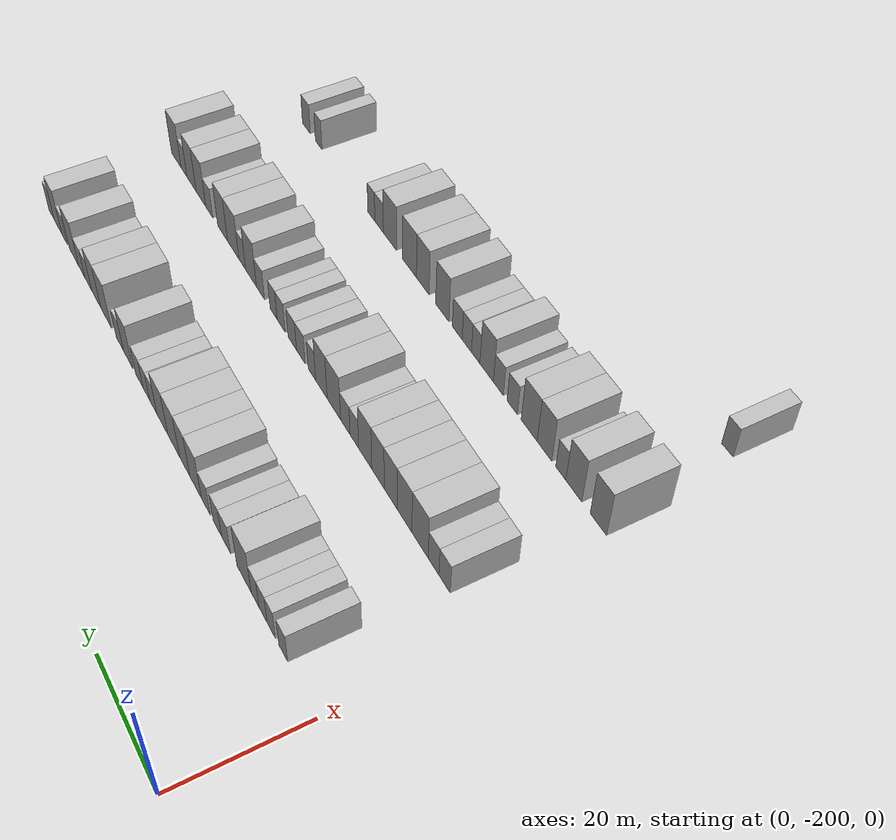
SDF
<sdf version="1.6">
 <world name="default">
  <model name="building_48">
   <static>1</static>
   <pose>25.0000 -190.4062 0 0.000000 0.000000 0.000000</pose>
   <link name="link">
    <pose>0 0 3.00 0 0 0</pose>
    <collision name="collision"><geometry><box><size>10.0000 2.5578 6.0000</size></box></geometry></collision>
    <visual name="visual">
     <cast_shadows>0</cast_shadows>
     <geometry><box><size>10.0000 2.5578 6.0000</size></box></geometry>
     <material>
      <script>
       <uri>model://HANNAS_wall/materials/scripts</uri>
       <uri>model://HANNAS_wall/materials/textures</uri>
       <name>vrc/HANNAS_wall</name>
      </script>
     </material>
    </visual>
   </link>
  </model>
  <model name="building_49">
   <static>1</static>
   <pose>25.0000 -186.9182 0 0.000000 0.000000 0.000000</pose>
   <link name="link">
    <pose>0 0 3.00 0 0 0</pose>
    <collision name="collision"><geometry><box><size>10.0000 2.4184 6.0000</size></box></geometry></collision>
    <visual name="visual">
     <cast_shadows>0</cast_shadows>
     <geometry><box><size>10.0000 2.4184 6.0000</size></box></geometry>
     <material>
      <script>
       <uri>model://HANNAS_wall/materials/scripts</uri>
       <uri>model://HANNAS_wall/materials/textures</uri>
       <name>vrc/HANNAS_wall</name>
      </script>
     </material>
    </visual>
   </link>
  </model>
  <model name="building_50">
   <static>1</static>
   <pose>25.0000 -184.4564 0 0.000000 0.000000 0.000000</pose>
   <link name="link">
    <pose>0 0 3.00 0 0 0</pose>
    <collision name="collision"><geometry><box><size>10.0000 2.5052 6.0000</size></box></geometry></collision>
    <visual name="visual">
     <cast_shadows>0</cast_shadows>
     <geometry><box><size>10.0000 2.5052 6.0000</size></box></geometry>
     <material>
      <script>
       <uri>model://HANNAS_wall/materials/scripts</uri>
       <uri>model://HANNAS_wall/materials/textures</uri>
       <name>vrc/HANNAS_wall</name>
      </script>
     </material>
    </visual>
   </link>
  </model>
  <model name="building_51">
   <static>1</static>
   <pose>25.0000 -181.9960 0 0.000000 0.000000 0.000000</pose>
   <link name="link">
    <pose>0 0 3.00 0 0 0</pose>
    <collision name="collision"><geometry><box><size>10.0000 2.4155 6.0000</size></box></geometry></collision>
    <visual name="visual">
     <cast_shadows>0</cast_shadows>
     <geometry><box><size>10.0000 2.4155 6.0000</size></box></geometry>
     <material>
      <script>
       <uri>model://HANNAS_wall/materials/scripts</uri>
       <uri>model://HANNAS_wall/materials/textures</uri>
       <name>vrc/HANNAS_wall</name>
      </script>
     </material>
    </visual>
   </link>
  </model>
  <model name="building_52">
   <static>1</static>
   <pose>25.0000 -178.5819 0 0.000000 0.000000 0.000000</pose>
   <link name="link">
    <pose>0 0 4.50 0 0 0</pose>
    <collision name="collision"><geometry><box><size>10.0000 4.4126 9.0000</size></box></geometry></collision>
    <visual name="visual">
     <cast_shadows>0</cast_shadows>
     <geometry><box><size>10.0000 4.4126 9.0000</size></box></geometry>
     <material>
      <script>
       <uri>model://HANNAS_wall/materials/scripts</uri>
       <uri>model://HANNAS_wall/materials/textures</uri>
       <name>vrc/HANNAS_wall</name>
      </script>
     </material>
    </visual>
   </link>
  </model>
  <model name="building_53">
   <static>1</static>
   <pose>25.0000 -172.8973 0 0.000000 0.000000 0.000000</pose>
   <link name="link">
    <pose>0 0 3.00 0 0 0</pose>
    <collision name="collision"><geometry><box><size>10.0000 2.9566 6.0000</size></box></geometry></collision>
    <visual name="visual">
     <cast_shadows>0</cast_shadows>
     <geometry><box><size>10.0000 2.9566 6.0000</size></box></geometry>
     <material>
      <script>
       <uri>model://HANNAS_wall/materials/scripts</uri>
       <uri>model://HANNAS_wall/materials/textures</uri>
       <name>vrc/HANNAS_wall</name>
      </script>
     </material>
    </visual>
   </link>
  </model>
  <model name="building_54">
   <static>1</static>
   <pose>25.0000 -170.0509 0 0.000000 0.000000 0.000000</pose>
   <link name="link">
    <pose>0 0 3.00 0 0 0</pose>
    <collision name="collision"><geometry><box><size>10.0000 2.7363 6.0000</size></box></geometry></collision>
    <visual name="visual">
     <cast_shadows>0</cast_shadows>
     <geometry><box><size>10.0000 2.7363 6.0000</size></box></geometry>
     <material>
      <script>
       <uri>model://HANNAS_wall/materials/scripts</uri>
       <uri>model://HANNAS_wall/materials/textures</uri>
       <name>vrc/HANNAS_wall</name>
      </script>
     </material>
    </visual>
   </link>
  </model>
  <model name="building_55">
   <static>1</static>
   <pose>25.0000 -166.2082 0 0.000000 0.000000 0.000000</pose>
   <link name="link">
    <pose>0 0 3.00 0 0 0</pose>
    <collision name="collision"><geometry><box><size>10.0000 2.9493 6.0000</size></box></geometry></collision>
    <visual name="visual">
     <cast_shadows>0</cast_shadows>
     <geometry><box><size>10.0000 2.9493 6.0000</size></box></geometry>
     <material>
      <script>
       <uri>model://HANNAS_wall/materials/scripts</uri>
       <uri>model://HANNAS_wall/materials/textures</uri>
       <name>vrc/HANNAS_wall</name>
      </script>
     </material>
    </visual>
   </link>
  </model>
  <model name="building_56">
   <static>1</static>
   <pose>25.0000 -162.7628 0 0.000000 0.000000 0.000000</pose>
   <link name="link">
    <pose>0 0 4.50 0 0 0</pose>
    <collision name="collision"><geometry><box><size>10.0000 3.9414 9.0000</size></box></geometry></collision>
    <visual name="visual">
     <cast_shadows>0</cast_shadows>
     <geometry><box><size>10.0000 3.9414 9.0000</size></box></geometry>
     <material>
      <script>
       <uri>model://HANNAS_wall/materials/scripts</uri>
       <uri>model://HANNAS_wall/materials/textures</uri>
       <name>vrc/HANNAS_wall</name>
      </script>
     </material>
    </visual>
   </link>
  </model>
  <model name="building_57">
   <static>1</static>
   <pose>25.0000 -158.9869 0 0.000000 0.000000 0.000000</pose>
   <link name="link">
    <pose>0 0 4.50 0 0 0</pose>
    <collision name="collision"><geometry><box><size>10.0000 3.6104 9.0000</size></box></geometry></collision>
    <visual name="visual">
     <cast_shadows>0</cast_shadows>
     <geometry><box><size>10.0000 3.6104 9.0000</size></box></geometry>
     <material>
      <script>
       <uri>model://HANNAS_wall/materials/scripts</uri>
       <uri>model://HANNAS_wall/materials/textures</uri>
       <name>vrc/HANNAS_wall</name>
      </script>
     </material>
    </visual>
   </link>
  </model>
  <model name="building_58">
   <static>1</static>
   <pose>25.0000 -155.0397 0 0.000000 0.000000 0.000000</pose>
   <link name="link">
    <pose>0 0 4.50 0 0 0</pose>
    <collision name="collision"><geometry><box><size>10.0000 4.2842 9.0000</size></box></geometry></collision>
    <visual name="visual">
     <cast_shadows>0</cast_shadows>
     <geometry><box><size>10.0000 4.2842 9.0000</size></box></geometry>
     <material>
      <script>
       <uri>model://HANNAS_wall/materials/scripts</uri>
       <uri>model://HANNAS_wall/materials/textures</uri>
       <name>vrc/HANNAS_wall</name>
      </script>
     </material>
    </visual>
   </link>
  </model>
  <model name="building_59">
   <static>1</static>
   <pose>25.0000 -150.8545 0 0.000000 0.000000 0.000000</pose>
   <link name="link">
    <pose>0 0 4.50 0 0 0</pose>
    <collision name="collision"><geometry><box><size>10.0000 4.0862 9.0000</size></box></geometry></collision>
    <visual name="visual">
     <cast_shadows>0</cast_shadows>
     <geometry><box><size>10.0000 4.0862 9.0000</size></box></geometry>
     <material>
      <script>
       <uri>model://HANNAS_wall/materials/scripts</uri>
       <uri>model://HANNAS_wall/materials/textures</uri>
       <name>vrc/HANNAS_wall</name>
      </script>
     </material>
    </visual>
   </link>
  </model>
  <model name="building_60">
   <static>1</static>
   <pose>25.0000 -147.4458 0 0.000000 0.000000 0.000000</pose>
   <link name="link">
    <pose>0 0 3.00 0 0 0</pose>
    <collision name="collision"><geometry><box><size>10.0000 2.7311 6.0000</size></box></geometry></collision>
    <visual name="visual">
     <cast_shadows>0</cast_shadows>
     <geometry><box><size>10.0000 2.7311 6.0000</size></box></geometry>
     <material>
      <script>
       <uri>model://HANNAS_wall/materials/scripts</uri>
       <uri>model://HANNAS_wall/materials/textures</uri>
       <name>vrc/HANNAS_wall</name>
      </script>
     </material>
    </visual>
   </link>
  </model>
  <model name="building_61">
   <static>1</static>
   <pose>25.0000 -144.8244 0 0.000000 0.000000 0.000000</pose>
   <link name="link">
    <pose>0 0 3.00 0 0 0</pose>
    <collision name="collision"><geometry><box><size>10.0000 2.5116 6.0000</size></box></geometry></collision>
    <visual name="visual">
     <cast_shadows>0</cast_shadows>
     <geometry><box><size>10.0000 2.5116 6.0000</size></box></geometry>
     <material>
      <script>
       <uri>model://HANNAS_wall/materials/scripts</uri>
       <uri>model://HANNAS_wall/materials/textures</uri>
       <name>vrc/HANNAS_wall</name>
      </script>
     </material>
    </visual>
   </link>
  </model>
  <model name="building_62">
   <static>1</static>
   <pose>25.0000 -142.0736 0 0.000000 0.000000 0.000000</pose>
   <link name="link">
    <pose>0 0 3.00 0 0 0</pose>
    <collision name="collision"><geometry><box><size>10.0000 2.9901 6.0000</size></box></geometry></collision>
    <visual name="visual">
     <cast_shadows>0</cast_shadows>
     <geometry><box><size>10.0000 2.9901 6.0000</size></box></geometry>
     <material>
      <script>
       <uri>model://HANNAS_wall/materials/scripts</uri>
       <uri>model://HANNAS_wall/materials/textures</uri>
       <name>vrc/HANNAS_wall</name>
      </script>
     </material>
    </visual>
   </link>
  </model>
  <model name="building_63">
   <static>1</static>
   <pose>25.0000 -137.6854 0 0.000000 0.000000 0.000000</pose>
   <link name="link">
    <pose>0 0 4.50 0 0 0</pose>
    <collision name="collision"><geometry><box><size>10.0000 3.7863 9.0000</size></box></geometry></collision>
    <visual name="visual">
     <cast_shadows>0</cast_shadows>
     <geometry><box><size>10.0000 3.7863 9.0000</size></box></geometry>
     <material>
      <script>
       <uri>model://HANNAS_wall/materials/scripts</uri>
       <uri>model://HANNAS_wall/materials/textures</uri>
       <name>vrc/HANNAS_wall</name>
      </script>
     </material>
    </visual>
   </link>
  </model>
  <model name="building_64">
   <static>1</static>
   <pose>25.0000 -134.3285 0 0.000000 0.000000 0.000000</pose>
   <link name="link">
    <pose>0 0 3.00 0 0 0</pose>
    <collision name="collision"><geometry><box><size>10.0000 2.9276 6.0000</size></box></geometry></collision>
    <visual name="visual">
     <cast_shadows>0</cast_shadows>
     <geometry><box><size>10.0000 2.9276 6.0000</size></box></geometry>
     <material>
      <script>
       <uri>model://HANNAS_wall/materials/scripts</uri>
       <uri>model://HANNAS_wall/materials/textures</uri>
       <name>vrc/HANNAS_wall</name>
      </script>
     </material>
    </visual>
   </link>
  </model>
  <model name="building_65">
   <static>1</static>
   <pose>25.0000 -128.6409 0 0.000000 0.000000 0.000000</pose>
   <link name="link">
    <pose>0 0 4.50 0 0 0</pose>
    <collision name="collision"><geometry><box><size>10.0000 4.4477 9.0000</size></box></geometry></collision>
    <visual name="visual">
     <cast_shadows>0</cast_shadows>
     <geometry><box><size>10.0000 4.4477 9.0000</size></box></geometry>
     <material>
      <script>
       <uri>model://HANNAS_wall/materials/scripts</uri>
       <uri>model://HANNAS_wall/materials/textures</uri>
       <name>vrc/HANNAS_wall</name>
      </script>
     </material>
    </visual>
   </link>
  </model>
  <model name="building_66">
   <static>1</static>
   <pose>25.0000 -124.4693 0 0.000000 0.000000 0.000000</pose>
   <link name="link">
    <pose>0 0 4.50 0 0 0</pose>
    <collision name="collision"><geometry><box><size>10.0000 3.8953 9.0000</size></box></geometry></collision>
    <visual name="visual">
     <cast_shadows>0</cast_shadows>
     <geometry><box><size>10.0000 3.8953 9.0000</size></box></geometry>
     <material>
      <script>
       <uri>model://HANNAS_wall/materials/scripts</uri>
       <uri>model://HANNAS_wall/materials/textures</uri>
       <name>vrc/HANNAS_wall</name>
      </script>
     </material>
    </visual>
   </link>
  </model>
  <model name="building_67">
   <static>1</static>
   <pose>25.0000 -121.0369 0 0.000000 0.000000 0.000000</pose>
   <link name="link">
    <pose>0 0 3.00 0 0 0</pose>
    <collision name="collision"><geometry><box><size>10.0000 2.9696 6.0000</size></box></geometry></collision>
    <visual name="visual">
     <cast_shadows>0</cast_shadows>
     <geometry><box><size>10.0000 2.9696 6.0000</size></box></geometry>
     <material>
      <script>
       <uri>model://HANNAS_wall/materials/scripts</uri>
       <uri>model://HANNAS_wall/materials/textures</uri>
       <name>vrc/HANNAS_wall</name>
      </script>
     </material>
    </visual>
   </link>
  </model>
  <model name="building_68">
   <static>1</static>
   <pose>25.0000 -118.1650 0 0.000000 0.000000 0.000000</pose>
   <link name="link">
    <pose>0 0 3.00 0 0 0</pose>
    <collision name="collision"><geometry><box><size>10.0000 2.7742 6.0000</size></box></geometry></collision>
    <visual name="visual">
     <cast_shadows>0</cast_shadows>
     <geometry><box><size>10.0000 2.7742 6.0000</size></box></geometry>
     <material>
      <script>
       <uri>model://HANNAS_wall/materials/scripts</uri>
       <uri>model://HANNAS_wall/materials/textures</uri>
       <name>vrc/HANNAS_wall</name>
      </script>
     </material>
    </visual>
   </link>
  </model>
  <model name="building_69">
   <static>1</static>
   <pose>25.0000 -114.6606 0 0.000000 0.000000 0.000000</pose>
   <link name="link">
    <pose>0 0 4.50 0 0 0</pose>
    <collision name="collision"><geometry><box><size>10.0000 4.2346 9.0000</size></box></geometry></collision>
    <visual name="visual">
     <cast_shadows>0</cast_shadows>
     <geometry><box><size>10.0000 4.2346 9.0000</size></box></geometry>
     <material>
      <script>
       <uri>model://HANNAS_wall/materials/scripts</uri>
       <uri>model://HANNAS_wall/materials/textures</uri>
       <name>vrc/HANNAS_wall</name>
      </script>
     </material>
    </visual>
   </link>
  </model>
  <model name="building_70">
   <static>1</static>
   <pose>25.0000 -110.3099 0 0.000000 0.000000 0.000000</pose>
   <link name="link">
    <pose>0 0 3.00 0 0 0</pose>
    <collision name="collision"><geometry><box><size>10.0000 2.4667 6.0000</size></box></geometry></collision>
    <visual name="visual">
     <cast_shadows>0</cast_shadows>
     <geometry><box><size>10.0000 2.4667 6.0000</size></box></geometry>
     <material>
      <script>
       <uri>model://HANNAS_wall/materials/scripts</uri>
       <uri>model://HANNAS_wall/materials/textures</uri>
       <name>vrc/HANNAS_wall</name>
      </script>
     </material>
    </visual>
   </link>
  </model>
  <model name="building_71">
   <static>1</static>
   <pose>25.0000 -107.2206 0 0.000000 0.000000 0.000000</pose>
   <link name="link">
    <pose>0 0 4.50 0 0 0</pose>
    <collision name="collision"><geometry><box><size>10.0000 3.7119 9.0000</size></box></geometry></collision>
    <visual name="visual">
     <cast_shadows>0</cast_shadows>
     <geometry><box><size>10.0000 3.7119 9.0000</size></box></geometry>
     <material>
      <script>
       <uri>model://HANNAS_wall/materials/scripts</uri>
       <uri>model://HANNAS_wall/materials/textures</uri>
       <name>vrc/HANNAS_wall</name>
      </script>
     </material>
    </visual>
   </link>
  </model>
  <model name="building_72">
   <static>1</static>
   <pose>25.0000 -104.1371 0 0.000000 0.000000 0.000000</pose>
   <link name="link">
    <pose>0 0 3.00 0 0 0</pose>
    <collision name="collision"><geometry><box><size>10.0000 2.4552 6.0000</size></box></geometry></collision>
    <visual name="visual">
     <cast_shadows>0</cast_shadows>
     <geometry><box><size>10.0000 2.4552 6.0000</size></box></geometry>
     <material>
      <script>
       <uri>model://HANNAS_wall/materials/scripts</uri>
       <uri>model://HANNAS_wall/materials/textures</uri>
       <name>vrc/HANNAS_wall</name>
      </script>
     </material>
    </visual>
   </link>
  </model>
  <model name="building_244">
   <static>1</static>
   <pose>47.0000 -190.9431 0 0.000000 0.000000 0.000000</pose>
   <link name="link">
    <pose>0 0 3.00 0 0 0</pose>
    <collision name="collision"><geometry><box><size>10.0000 2.9483 6.0000</size></box></geometry></collision>
    <visual name="visual">
     <cast_shadows>0</cast_shadows>
     <geometry><box><size>10.0000 2.9483 6.0000</size></box></geometry>
     <material>
      <script>
       <uri>model://HANNAS_wall/materials/scripts</uri>
       <uri>model://HANNAS_wall/materials/textures</uri>
       <name>vrc/HANNAS_wall</name>
      </script>
     </material>
    </visual>
   </link>
  </model>
  <model name="building_245">
   <static>1</static>
   <pose>47.0000 -188.0620 0 0.000000 0.000000 0.000000</pose>
   <link name="link">
    <pose>0 0 3.00 0 0 0</pose>
    <collision name="collision"><geometry><box><size>10.0000 2.8139 6.0000</size></box></geometry></collision>
    <visual name="visual">
     <cast_shadows>0</cast_shadows>
     <geometry><box><size>10.0000 2.8139 6.0000</size></box></geometry>
     <material>
      <script>
       <uri>model://HANNAS_wall/materials/scripts</uri>
       <uri>model://HANNAS_wall/materials/textures</uri>
       <name>vrc/HANNAS_wall</name>
      </script>
     </material>
    </visual>
   </link>
  </model>
  <model name="building_246">
   <static>1</static>
   <pose>47.0000 -184.4398 0 0.000000 0.000000 0.000000</pose>
   <link name="link">
    <pose>0 0 4.50 0 0 0</pose>
    <collision name="collision"><geometry><box><size>10.0000 4.4307 9.0000</size></box></geometry></collision>
    <visual name="visual">
     <cast_shadows>0</cast_shadows>
     <geometry><box><size>10.0000 4.4307 9.0000</size></box></geometry>
     <material>
      <script>
       <uri>model://HANNAS_wall/materials/scripts</uri>
       <uri>model://HANNAS_wall/materials/textures</uri>
       <name>vrc/HANNAS_wall</name>
      </script>
     </material>
    </visual>
   </link>
  </model>
  <model name="building_247">
   <static>1</static>
   <pose>47.0000 -180.1959 0 0.000000 0.000000 0.000000</pose>
   <link name="link">
    <pose>0 0 4.50 0 0 0</pose>
    <collision name="collision"><geometry><box><size>10.0000 4.0570 9.0000</size></box></geometry></collision>
    <visual name="visual">
     <cast_shadows>0</cast_shadows>
     <geometry><box><size>10.0000 4.0570 9.0000</size></box></geometry>
     <material>
      <script>
       <uri>model://HANNAS_wall/materials/scripts</uri>
       <uri>model://HANNAS_wall/materials/textures</uri>
       <name>vrc/HANNAS_wall</name>
      </script>
     </material>
    </visual>
   </link>
  </model>
  <model name="building_248">
   <static>1</static>
   <pose>47.0000 -176.3218 0 0.000000 0.000000 0.000000</pose>
   <link name="link">
    <pose>0 0 4.50 0 0 0</pose>
    <collision name="collision"><geometry><box><size>10.0000 3.6912 9.0000</size></box></geometry></collision>
    <visual name="visual">
     <cast_shadows>0</cast_shadows>
     <geometry><box><size>10.0000 3.6912 9.0000</size></box></geometry>
     <material>
      <script>
       <uri>model://HANNAS_wall/materials/scripts</uri>
       <uri>model://HANNAS_wall/materials/textures</uri>
       <name>vrc/HANNAS_wall</name>
      </script>
     </material>
    </visual>
   </link>
  </model>
  <model name="building_249">
   <static>1</static>
   <pose>47.0000 -172.6531 0 0.000000 0.000000 0.000000</pose>
   <link name="link">
    <pose>0 0 4.50 0 0 0</pose>
    <collision name="collision"><geometry><box><size>10.0000 3.6463 9.0000</size></box></geometry></collision>
    <visual name="visual">
     <cast_shadows>0</cast_shadows>
     <geometry><box><size>10.0000 3.6463 9.0000</size></box></geometry>
     <material>
      <script>
       <uri>model://HANNAS_wall/materials/scripts</uri>
       <uri>model://HANNAS_wall/materials/textures</uri>
       <name>vrc/HANNAS_wall</name>
      </script>
     </material>
    </visual>
   </link>
  </model>
  <model name="building_250">
   <static>1</static>
   <pose>47.0000 -168.8753 0 0.000000 0.000000 0.000000</pose>
   <link name="link">
    <pose>0 0 4.50 0 0 0</pose>
    <collision name="collision"><geometry><box><size>10.0000 3.9091 9.0000</size></box></geometry></collision>
    <visual name="visual">
     <cast_shadows>0</cast_shadows>
     <geometry><box><size>10.0000 3.9091 9.0000</size></box></geometry>
     <material>
      <script>
       <uri>model://HANNAS_wall/materials/scripts</uri>
       <uri>model://HANNAS_wall/materials/textures</uri>
       <name>vrc/HANNAS_wall</name>
      </script>
     </material>
    </visual>
   </link>
  </model>
  <model name="building_251">
   <static>1</static>
   <pose>47.0000 -165.6194 0 0.000000 0.000000 0.000000</pose>
   <link name="link">
    <pose>0 0 3.00 0 0 0</pose>
    <collision name="collision"><geometry><box><size>10.0000 2.6027 6.0000</size></box></geometry></collision>
    <visual name="visual">
     <cast_shadows>0</cast_shadows>
     <geometry><box><size>10.0000 2.6027 6.0000</size></box></geometry>
     <material>
      <script>
       <uri>model://HANNAS_wall/materials/scripts</uri>
       <uri>model://HANNAS_wall/materials/textures</uri>
       <name>vrc/HANNAS_wall</name>
      </script>
     </material>
    </visual>
   </link>
  </model>
  <model name="building_252">
   <static>1</static>
   <pose>47.0000 -162.8773 0 0.000000 0.000000 0.000000</pose>
   <link name="link">
    <pose>0 0 3.00 0 0 0</pose>
    <collision name="collision"><geometry><box><size>10.0000 2.8815 6.0000</size></box></geometry></collision>
    <visual name="visual">
     <cast_shadows>0</cast_shadows>
     <geometry><box><size>10.0000 2.8815 6.0000</size></box></geometry>
     <material>
      <script>
       <uri>model://HANNAS_wall/materials/scripts</uri>
       <uri>model://HANNAS_wall/materials/textures</uri>
       <name>vrc/HANNAS_wall</name>
      </script>
     </material>
    </visual>
   </link>
  </model>
  <model name="building_253">
   <static>1</static>
   <pose>47.0000 -159.3094 0 0.000000 0.000000 0.000000</pose>
   <link name="link">
    <pose>0 0 4.50 0 0 0</pose>
    <collision name="collision"><geometry><box><size>10.0000 4.2542 9.0000</size></box></geometry></collision>
    <visual name="visual">
     <cast_shadows>0</cast_shadows>
     <geometry><box><size>10.0000 4.2542 9.0000</size></box></geometry>
     <material>
      <script>
       <uri>model://HANNAS_wall/materials/scripts</uri>
       <uri>model://HANNAS_wall/materials/textures</uri>
       <name>vrc/HANNAS_wall</name>
      </script>
     </material>
    </visual>
   </link>
  </model>
  <model name="building_254">
   <static>1</static>
   <pose>47.0000 -155.3266 0 0.000000 0.000000 0.000000</pose>
   <link name="link">
    <pose>0 0 4.50 0 0 0</pose>
    <collision name="collision"><geometry><box><size>10.0000 3.7112 9.0000</size></box></geometry></collision>
    <visual name="visual">
     <cast_shadows>0</cast_shadows>
     <geometry><box><size>10.0000 3.7112 9.0000</size></box></geometry>
     <material>
      <script>
       <uri>model://HANNAS_wall/materials/scripts</uri>
       <uri>model://HANNAS_wall/materials/textures</uri>
       <name>vrc/HANNAS_wall</name>
      </script>
     </material>
    </visual>
   </link>
  </model>
  <model name="building_255">
   <static>1</static>
   <pose>47.0000 -152.2572 0 0.000000 0.000000 0.000000</pose>
   <link name="link">
    <pose>0 0 3.00 0 0 0</pose>
    <collision name="collision"><geometry><box><size>10.0000 2.4276 6.0000</size></box></geometry></collision>
    <visual name="visual">
     <cast_shadows>0</cast_shadows>
     <geometry><box><size>10.0000 2.4276 6.0000</size></box></geometry>
     <material>
      <script>
       <uri>model://HANNAS_wall/materials/scripts</uri>
       <uri>model://HANNAS_wall/materials/textures</uri>
       <name>vrc/HANNAS_wall</name>
      </script>
     </material>
    </visual>
   </link>
  </model>
  <model name="building_256">
   <static>1</static>
   <pose>47.0000 -148.5855 0 0.000000 0.000000 0.000000</pose>
   <link name="link">
    <pose>0 0 3.00 0 0 0</pose>
    <collision name="collision"><geometry><box><size>10.0000 2.9158 6.0000</size></box></geometry></collision>
    <visual name="visual">
     <cast_shadows>0</cast_shadows>
     <geometry><box><size>10.0000 2.9158 6.0000</size></box></geometry>
     <material>
      <script>
       <uri>model://HANNAS_wall/materials/scripts</uri>
       <uri>model://HANNAS_wall/materials/textures</uri>
       <name>vrc/HANNAS_wall</name>
      </script>
     </material>
    </visual>
   </link>
  </model>
  <model name="building_257">
   <static>1</static>
   <pose>47.0000 -145.6907 0 0.000000 0.000000 0.000000</pose>
   <link name="link">
    <pose>0 0 3.00 0 0 0</pose>
    <collision name="collision"><geometry><box><size>10.0000 2.8737 6.0000</size></box></geometry></collision>
    <visual name="visual">
     <cast_shadows>0</cast_shadows>
     <geometry><box><size>10.0000 2.8737 6.0000</size></box></geometry>
     <material>
      <script>
       <uri>model://HANNAS_wall/materials/scripts</uri>
       <uri>model://HANNAS_wall/materials/textures</uri>
       <name>vrc/HANNAS_wall</name>
      </script>
     </material>
    </visual>
   </link>
  </model>
  <model name="building_258">
   <static>1</static>
   <pose>47.0000 -141.8603 0 0.000000 0.000000 0.000000</pose>
   <link name="link">
    <pose>0 0 3.00 0 0 0</pose>
    <collision name="collision"><geometry><box><size>10.0000 2.7872 6.0000</size></box></geometry></collision>
    <visual name="visual">
     <cast_shadows>0</cast_shadows>
     <geometry><box><size>10.0000 2.7872 6.0000</size></box></geometry>
     <material>
      <script>
       <uri>model://HANNAS_wall/materials/scripts</uri>
       <uri>model://HANNAS_wall/materials/textures</uri>
       <name>vrc/HANNAS_wall</name>
      </script>
     </material>
    </visual>
   </link>
  </model>
  <model name="building_259">
   <static>1</static>
   <pose>47.0000 -139.2314 0 0.000000 0.000000 0.000000</pose>
   <link name="link">
    <pose>0 0 3.00 0 0 0</pose>
    <collision name="collision"><geometry><box><size>10.0000 2.4706 6.0000</size></box></geometry></collision>
    <visual name="visual">
     <cast_shadows>0</cast_shadows>
     <geometry><box><size>10.0000 2.4706 6.0000</size></box></geometry>
     <material>
      <script>
       <uri>model://HANNAS_wall/materials/scripts</uri>
       <uri>model://HANNAS_wall/materials/textures</uri>
       <name>vrc/HANNAS_wall</name>
      </script>
     </material>
    </visual>
   </link>
  </model>
  <model name="building_260">
   <static>1</static>
   <pose>47.0000 -134.5183 0 0.000000 0.000000 0.000000</pose>
   <link name="link">
    <pose>0 0 3.00 0 0 0</pose>
    <collision name="collision"><geometry><box><size>10.0000 2.9555 6.0000</size></box></geometry></collision>
    <visual name="visual">
     <cast_shadows>0</cast_shadows>
     <geometry><box><size>10.0000 2.9555 6.0000</size></box></geometry>
     <material>
      <script>
       <uri>model://HANNAS_wall/materials/scripts</uri>
       <uri>model://HANNAS_wall/materials/textures</uri>
       <name>vrc/HANNAS_wall</name>
      </script>
     </material>
    </visual>
   </link>
  </model>
  <model name="building_261">
   <static>1</static>
   <pose>47.0000 -131.0496 0 0.000000 0.000000 0.000000</pose>
   <link name="link">
    <pose>0 0 4.50 0 0 0</pose>
    <collision name="collision"><geometry><box><size>10.0000 3.9818 9.0000</size></box></geometry></collision>
    <visual name="visual">
     <cast_shadows>0</cast_shadows>
     <geometry><box><size>10.0000 3.9818 9.0000</size></box></geometry>
     <material>
      <script>
       <uri>model://HANNAS_wall/materials/scripts</uri>
       <uri>model://HANNAS_wall/materials/textures</uri>
       <name>vrc/HANNAS_wall</name>
      </script>
     </material>
    </visual>
   </link>
  </model>
  <model name="building_262">
   <static>1</static>
   <pose>47.0000 -127.8118 0 0.000000 0.000000 0.000000</pose>
   <link name="link">
    <pose>0 0 3.00 0 0 0</pose>
    <collision name="collision"><geometry><box><size>10.0000 2.4939 6.0000</size></box></geometry></collision>
    <visual name="visual">
     <cast_shadows>0</cast_shadows>
     <geometry><box><size>10.0000 2.4939 6.0000</size></box></geometry>
     <material>
      <script>
       <uri>model://HANNAS_wall/materials/scripts</uri>
       <uri>model://HANNAS_wall/materials/textures</uri>
       <name>vrc/HANNAS_wall</name>
      </script>
     </material>
    </visual>
   </link>
  </model>
  <model name="building_263">
   <static>1</static>
   <pose>47.0000 -124.3700 0 0.000000 0.000000 0.000000</pose>
   <link name="link">
    <pose>0 0 4.50 0 0 0</pose>
    <collision name="collision"><geometry><box><size>10.0000 4.3896 9.0000</size></box></geometry></collision>
    <visual name="visual">
     <cast_shadows>0</cast_shadows>
     <geometry><box><size>10.0000 4.3896 9.0000</size></box></geometry>
     <material>
      <script>
       <uri>model://HANNAS_wall/materials/scripts</uri>
       <uri>model://HANNAS_wall/materials/textures</uri>
       <name>vrc/HANNAS_wall</name>
      </script>
     </material>
    </visual>
   </link>
  </model>
  <model name="building_264">
   <static>1</static>
   <pose>47.0000 -120.2869 0 0.000000 0.000000 0.000000</pose>
   <link name="link">
    <pose>0 0 4.50 0 0 0</pose>
    <collision name="collision"><geometry><box><size>10.0000 3.7766 9.0000</size></box></geometry></collision>
    <visual name="visual">
     <cast_shadows>0</cast_shadows>
     <geometry><box><size>10.0000 3.7766 9.0000</size></box></geometry>
     <material>
      <script>
       <uri>model://HANNAS_wall/materials/scripts</uri>
       <uri>model://HANNAS_wall/materials/textures</uri>
       <name>vrc/HANNAS_wall</name>
      </script>
     </material>
    </visual>
   </link>
  </model>
  <model name="building_265">
   <static>1</static>
   <pose>47.0000 -114.9879 0 0.000000 0.000000 0.000000</pose>
   <link name="link">
    <pose>0 0 3.00 0 0 0</pose>
    <collision name="collision"><geometry><box><size>10.0000 2.8216 6.0000</size></box></geometry></collision>
    <visual name="visual">
     <cast_shadows>0</cast_shadows>
     <geometry><box><size>10.0000 2.8216 6.0000</size></box></geometry>
     <material>
      <script>
       <uri>model://HANNAS_wall/materials/scripts</uri>
       <uri>model://HANNAS_wall/materials/textures</uri>
       <name>vrc/HANNAS_wall</name>
      </script>
     </material>
    </visual>
   </link>
  </model>
  <model name="building_266">
   <static>1</static>
   <pose>47.0000 -111.6162 0 0.000000 0.000000 0.000000</pose>
   <link name="link">
    <pose>0 0 4.50 0 0 0</pose>
    <collision name="collision"><geometry><box><size>10.0000 3.9217 9.0000</size></box></geometry></collision>
    <visual name="visual">
     <cast_shadows>0</cast_shadows>
     <geometry><box><size>10.0000 3.9217 9.0000</size></box></geometry>
     <material>
      <script>
       <uri>model://HANNAS_wall/materials/scripts</uri>
       <uri>model://HANNAS_wall/materials/textures</uri>
       <name>vrc/HANNAS_wall</name>
      </script>
     </material>
    </visual>
   </link>
  </model>
  <model name="building_267">
   <static>1</static>
   <pose>47.0000 -107.7542 0 0.000000 0.000000 0.000000</pose>
   <link name="link">
    <pose>0 0 4.50 0 0 0</pose>
    <collision name="collision"><geometry><box><size>10.0000 3.8024 9.0000</size></box></geometry></collision>
    <visual name="visual">
     <cast_shadows>0</cast_shadows>
     <geometry><box><size>10.0000 3.8024 9.0000</size></box></geometry>
     <material>
      <script>
       <uri>model://HANNAS_wall/materials/scripts</uri>
       <uri>model://HANNAS_wall/materials/textures</uri>
       <name>vrc/HANNAS_wall</name>
      </script>
     </material>
    </visual>
   </link>
  </model>
  <model name="building_268">
   <static>1</static>
   <pose>47.0000 -104.6164 0 0.000000 0.000000 0.000000</pose>
   <link name="link">
    <pose>0 0 3.00 0 0 0</pose>
    <collision name="collision"><geometry><box><size>10.0000 2.4731 6.0000</size></box></geometry></collision>
    <visual name="visual">
     <cast_shadows>0</cast_shadows>
     <geometry><box><size>10.0000 2.4731 6.0000</size></box></geometry>
     <material>
      <script>
       <uri>model://HANNAS_wall/materials/scripts</uri>
       <uri>model://HANNAS_wall/materials/textures</uri>
       <name>vrc/HANNAS_wall</name>
      </script>
     </material>
    </visual>
   </link>
  </model>
  <model name="building_269">
   <static>1</static>
   <pose>47.0000 -101.3326 0 0.000000 0.000000 0.000000</pose>
   <link name="link">
    <pose>0 0 4.50 0 0 0</pose>
    <collision name="collision"><geometry><box><size>10.0000 4.0945 9.0000</size></box></geometry></collision>
    <visual name="visual">
     <cast_shadows>0</cast_shadows>
     <geometry><box><size>10.0000 4.0945 9.0000</size></box></geometry>
     <material>
      <script>
       <uri>model://HANNAS_wall/materials/scripts</uri>
       <uri>model://HANNAS_wall/materials/textures</uri>
       <name>vrc/HANNAS_wall</name>
      </script>
     </material>
    </visual>
   </link>
  </model>
  <model name="building_431">
   <static>1</static>
   <pose>69.0000 -192.3479 0 0.000000 0.000000 0.000000</pose>
   <link name="link">
    <pose>0 0 4.50 0 0 0</pose>
    <collision name="collision"><geometry><box><size>10.0000 3.9008 9.0000</size></box></geometry></collision>
    <visual name="visual">
     <cast_shadows>0</cast_shadows>
     <geometry><box><size>10.0000 3.9008 9.0000</size></box></geometry>
     <material>
      <script>
       <uri>model://HANNAS_wall/materials/scripts</uri>
       <uri>model://HANNAS_wall/materials/textures</uri>
       <name>vrc/HANNAS_wall</name>
      </script>
     </material>
    </visual>
   </link>
  </model>
  <model name="building_432">
   <static>1</static>
   <pose>69.0000 -186.4126 0 0.000000 0.000000 0.000000</pose>
   <link name="link">
    <pose>0 0 4.50 0 0 0</pose>
    <collision name="collision"><geometry><box><size>10.0000 3.9699 9.0000</size></box></geometry></collision>
    <visual name="visual">
     <cast_shadows>0</cast_shadows>
     <geometry><box><size>10.0000 3.9699 9.0000</size></box></geometry>
     <material>
      <script>
       <uri>model://HANNAS_wall/materials/scripts</uri>
       <uri>model://HANNAS_wall/materials/textures</uri>
       <name>vrc/HANNAS_wall</name>
      </script>
     </material>
    </visual>
   </link>
  </model>
  <model name="building_433">
   <static>1</static>
   <pose>69.0000 -183.1719 0 0.000000 0.000000 0.000000</pose>
   <link name="link">
    <pose>0 0 3.00 0 0 0</pose>
    <collision name="collision"><geometry><box><size>10.0000 2.5115 6.0000</size></box></geometry></collision>
    <visual name="visual">
     <cast_shadows>0</cast_shadows>
     <geometry><box><size>10.0000 2.5115 6.0000</size></box></geometry>
     <material>
      <script>
       <uri>model://HANNAS_wall/materials/scripts</uri>
       <uri>model://HANNAS_wall/materials/textures</uri>
       <name>vrc/HANNAS_wall</name>
      </script>
     </material>
    </visual>
   </link>
  </model>
  <model name="building_434">
   <static>1</static>
   <pose>69.0000 -179.0197 0 0.000000 0.000000 0.000000</pose>
   <link name="link">
    <pose>0 0 4.50 0 0 0</pose>
    <collision name="collision"><geometry><box><size>10.0000 3.7928 9.0000</size></box></geometry></collision>
    <visual name="visual">
     <cast_shadows>0</cast_shadows>
     <geometry><box><size>10.0000 3.7928 9.0000</size></box></geometry>
     <material>
      <script>
       <uri>model://HANNAS_wall/materials/scripts</uri>
       <uri>model://HANNAS_wall/materials/textures</uri>
       <name>vrc/HANNAS_wall</name>
      </script>
     </material>
    </visual>
   </link>
  </model>
  <model name="building_435">
   <static>1</static>
   <pose>69.0000 -175.0247 0 0.000000 0.000000 0.000000</pose>
   <link name="link">
    <pose>0 0 4.50 0 0 0</pose>
    <collision name="collision"><geometry><box><size>10.0000 4.1973 9.0000</size></box></geometry></collision>
    <visual name="visual">
     <cast_shadows>0</cast_shadows>
     <geometry><box><size>10.0000 4.1973 9.0000</size></box></geometry>
     <material>
      <script>
       <uri>model://HANNAS_wall/materials/scripts</uri>
       <uri>model://HANNAS_wall/materials/textures</uri>
       <name>vrc/HANNAS_wall</name>
      </script>
     </material>
    </visual>
   </link>
  </model>
  <model name="building_436">
   <static>1</static>
   <pose>69.0000 -170.5121 0 0.000000 0.000000 0.000000</pose>
   <link name="link">
    <pose>0 0 3.00 0 0 0</pose>
    <collision name="collision"><geometry><box><size>10.0000 2.8278 6.0000</size></box></geometry></collision>
    <visual name="visual">
     <cast_shadows>0</cast_shadows>
     <geometry><box><size>10.0000 2.8278 6.0000</size></box></geometry>
     <material>
      <script>
       <uri>model://HANNAS_wall/materials/scripts</uri>
       <uri>model://HANNAS_wall/materials/textures</uri>
       <name>vrc/HANNAS_wall</name>
      </script>
     </material>
    </visual>
   </link>
  </model>
  <model name="building_437">
   <static>1</static>
   <pose>69.0000 -166.7235 0 0.000000 0.000000 0.000000</pose>
   <link name="link">
    <pose>0 0 3.00 0 0 0</pose>
    <collision name="collision"><geometry><box><size>10.0000 2.7494 6.0000</size></box></geometry></collision>
    <visual name="visual">
     <cast_shadows>0</cast_shadows>
     <geometry><box><size>10.0000 2.7494 6.0000</size></box></geometry>
     <material>
      <script>
       <uri>model://HANNAS_wall/materials/scripts</uri>
       <uri>model://HANNAS_wall/materials/textures</uri>
       <name>vrc/HANNAS_wall</name>
      </script>
     </material>
    </visual>
   </link>
  </model>
  <model name="building_438">
   <static>1</static>
   <pose>69.0000 -163.4219 0 0.000000 0.000000 0.000000</pose>
   <link name="link">
    <pose>0 0 4.50 0 0 0</pose>
    <collision name="collision"><geometry><box><size>10.0000 3.8539 9.0000</size></box></geometry></collision>
    <visual name="visual">
     <cast_shadows>0</cast_shadows>
     <geometry><box><size>10.0000 3.8539 9.0000</size></box></geometry>
     <material>
      <script>
       <uri>model://HANNAS_wall/materials/scripts</uri>
       <uri>model://HANNAS_wall/materials/textures</uri>
       <name>vrc/HANNAS_wall</name>
      </script>
     </material>
    </visual>
   </link>
  </model>
  <model name="building_439">
   <static>1</static>
   <pose>69.0000 -160.2916 0 0.000000 0.000000 0.000000</pose>
   <link name="link">
    <pose>0 0 3.00 0 0 0</pose>
    <collision name="collision"><geometry><box><size>10.0000 2.4068 6.0000</size></box></geometry></collision>
    <visual name="visual">
     <cast_shadows>0</cast_shadows>
     <geometry><box><size>10.0000 2.4068 6.0000</size></box></geometry>
     <material>
      <script>
       <uri>model://HANNAS_wall/materials/scripts</uri>
       <uri>model://HANNAS_wall/materials/textures</uri>
       <name>vrc/HANNAS_wall</name>
      </script>
     </material>
    </visual>
   </link>
  </model>
  <model name="building_440">
   <static>1</static>
   <pose>69.0000 -157.7346 0 0.000000 0.000000 0.000000</pose>
   <link name="link">
    <pose>0 0 3.00 0 0 0</pose>
    <collision name="collision"><geometry><box><size>10.0000 2.7071 6.0000</size></box></geometry></collision>
    <visual name="visual">
     <cast_shadows>0</cast_shadows>
     <geometry><box><size>10.0000 2.7071 6.0000</size></box></geometry>
     <material>
      <script>
       <uri>model://HANNAS_wall/materials/scripts</uri>
       <uri>model://HANNAS_wall/materials/textures</uri>
       <name>vrc/HANNAS_wall</name>
      </script>
     </material>
    </visual>
   </link>
  </model>
  <model name="building_441">
   <static>1</static>
   <pose>69.0000 -154.9217 0 0.000000 0.000000 0.000000</pose>
   <link name="link">
    <pose>0 0 3.00 0 0 0</pose>
    <collision name="collision"><geometry><box><size>10.0000 2.9188 6.0000</size></box></geometry></collision>
    <visual name="visual">
     <cast_shadows>0</cast_shadows>
     <geometry><box><size>10.0000 2.9188 6.0000</size></box></geometry>
     <material>
      <script>
       <uri>model://HANNAS_wall/materials/scripts</uri>
       <uri>model://HANNAS_wall/materials/textures</uri>
       <name>vrc/HANNAS_wall</name>
      </script>
     </material>
    </visual>
   </link>
  </model>
  <model name="building_442">
   <static>1</static>
   <pose>69.0000 -150.4404 0 0.000000 0.000000 0.000000</pose>
   <link name="link">
    <pose>0 0 4.50 0 0 0</pose>
    <collision name="collision"><geometry><box><size>10.0000 4.0436 9.0000</size></box></geometry></collision>
    <visual name="visual">
     <cast_shadows>0</cast_shadows>
     <geometry><box><size>10.0000 4.0436 9.0000</size></box></geometry>
     <material>
      <script>
       <uri>model://HANNAS_wall/materials/scripts</uri>
       <uri>model://HANNAS_wall/materials/textures</uri>
       <name>vrc/HANNAS_wall</name>
      </script>
     </material>
    </visual>
   </link>
  </model>
  <model name="building_443">
   <static>1</static>
   <pose>69.0000 -144.4187 0 0.000000 0.000000 0.000000</pose>
   <link name="link">
    <pose>0 0 4.50 0 0 0</pose>
    <collision name="collision"><geometry><box><size>10.0000 3.9998 9.0000</size></box></geometry></collision>
    <visual name="visual">
     <cast_shadows>0</cast_shadows>
     <geometry><box><size>10.0000 3.9998 9.0000</size></box></geometry>
     <material>
      <script>
       <uri>model://HANNAS_wall/materials/scripts</uri>
       <uri>model://HANNAS_wall/materials/textures</uri>
       <name>vrc/HANNAS_wall</name>
      </script>
     </material>
    </visual>
   </link>
  </model>
  <model name="building_444">
   <static>1</static>
   <pose>69.0000 -140.1814 0 0.000000 0.000000 0.000000</pose>
   <link name="link">
    <pose>0 0 4.50 0 0 0</pose>
    <collision name="collision"><geometry><box><size>10.0000 4.4748 9.0000</size></box></geometry></collision>
    <visual name="visual">
     <cast_shadows>0</cast_shadows>
     <geometry><box><size>10.0000 4.4748 9.0000</size></box></geometry>
     <material>
      <script>
       <uri>model://HANNAS_wall/materials/scripts</uri>
       <uri>model://HANNAS_wall/materials/textures</uri>
       <name>vrc/HANNAS_wall</name>
      </script>
     </material>
    </visual>
   </link>
  </model>
  <model name="building_445">
   <static>1</static>
   <pose>69.0000 -133.7860 0 0.000000 0.000000 0.000000</pose>
   <link name="link">
    <pose>0 0 4.50 0 0 0</pose>
    <collision name="collision"><geometry><box><size>10.0000 4.3162 9.0000</size></box></geometry></collision>
    <visual name="visual">
     <cast_shadows>0</cast_shadows>
     <geometry><box><size>10.0000 4.3162 9.0000</size></box></geometry>
     <material>
      <script>
       <uri>model://HANNAS_wall/materials/scripts</uri>
       <uri>model://HANNAS_wall/materials/textures</uri>
       <name>vrc/HANNAS_wall</name>
      </script>
     </material>
    </visual>
   </link>
  </model>
  <model name="building_446">
   <static>1</static>
   <pose>69.0000 -130.1884 0 0.000000 0.000000 0.000000</pose>
   <link name="link">
    <pose>0 0 3.00 0 0 0</pose>
    <collision name="collision"><geometry><box><size>10.0000 2.8789 6.0000</size></box></geometry></collision>
    <visual name="visual">
     <cast_shadows>0</cast_shadows>
     <geometry><box><size>10.0000 2.8789 6.0000</size></box></geometry>
     <material>
      <script>
       <uri>model://HANNAS_wall/materials/scripts</uri>
       <uri>model://HANNAS_wall/materials/textures</uri>
       <name>vrc/HANNAS_wall</name>
      </script>
     </material>
    </visual>
   </link>
  </model>
  <model name="building_447">
   <static>1</static>
   <pose>69.0000 -127.5355 0 0.000000 0.000000 0.000000</pose>
   <link name="link">
    <pose>0 0 3.00 0 0 0</pose>
    <collision name="collision"><geometry><box><size>10.0000 2.4269 6.0000</size></box></geometry></collision>
    <visual name="visual">
     <cast_shadows>0</cast_shadows>
     <geometry><box><size>10.0000 2.4269 6.0000</size></box></geometry>
     <material>
      <script>
       <uri>model://HANNAS_wall/materials/scripts</uri>
       <uri>model://HANNAS_wall/materials/textures</uri>
       <name>vrc/HANNAS_wall</name>
      </script>
     </material>
    </visual>
   </link>
  </model>
  <model name="building_448">
   <static>1</static>
   <pose>69.0000 -108.6373 0 0.000000 0.000000 0.000000</pose>
   <link name="link">
    <pose>0 0 3.00 0 0 0</pose>
    <collision name="collision"><geometry><box><size>10.0000 2.4565 6.0000</size></box></geometry></collision>
    <visual name="visual">
     <cast_shadows>0</cast_shadows>
     <geometry><box><size>10.0000 2.4565 6.0000</size></box></geometry>
     <material>
      <script>
       <uri>model://HANNAS_wall/materials/scripts</uri>
       <uri>model://HANNAS_wall/materials/textures</uri>
       <name>vrc/HANNAS_wall</name>
      </script>
     </material>
    </visual>
   </link>
  </model>
  <model name="building_449">
   <static>1</static>
   <pose>69.0000 -103.9231 0 0.000000 0.000000 0.000000</pose>
   <link name="link">
    <pose>0 0 3.00 0 0 0</pose>
    <collision name="collision"><geometry><box><size>10.0000 2.9718 6.0000</size></box></geometry></collision>
    <visual name="visual">
     <cast_shadows>0</cast_shadows>
     <geometry><box><size>10.0000 2.9718 6.0000</size></box></geometry>
     <material>
      <script>
       <uri>model://HANNAS_wall/materials/scripts</uri>
       <uri>model://HANNAS_wall/materials/textures</uri>
       <name>vrc/HANNAS_wall</name>
      </script>
     </material>
    </visual>
   </link>
  </model>
  <model name="building_617">
   <static>1</static>
   <pose>91.0000 -190.3218 0 0.000000 0.000000 0.000000</pose>
   <link name="link">
    <pose>0 0 3.00 0 0 0</pose>
    <collision name="collision"><geometry><box><size>10.0000 2.6168 6.0000</size></box></geometry></collision>
    <visual name="visual">
     <cast_shadows>0</cast_shadows>
     <geometry><box><size>10.0000 2.6168 6.0000</size></box></geometry>
     <material>
      <script>
       <uri>model://HANNAS_wall/materials/scripts</uri>
       <uri>model://HANNAS_wall/materials/textures</uri>
       <name>vrc/HANNAS_wall</name>
      </script>
     </material>
    </visual>
   </link>
  </model>
 </world>
</sdf>
